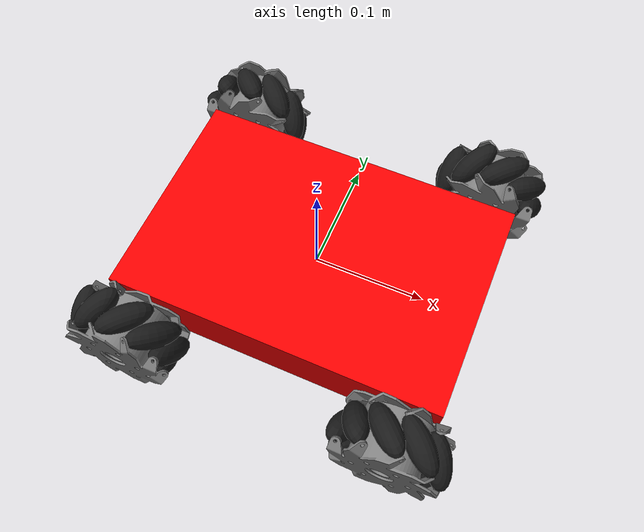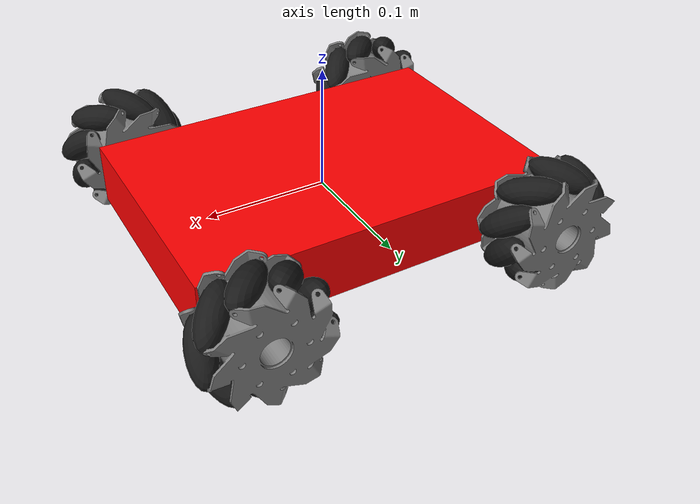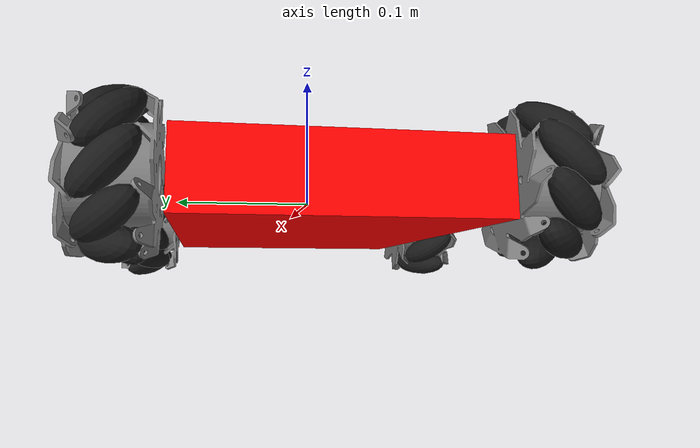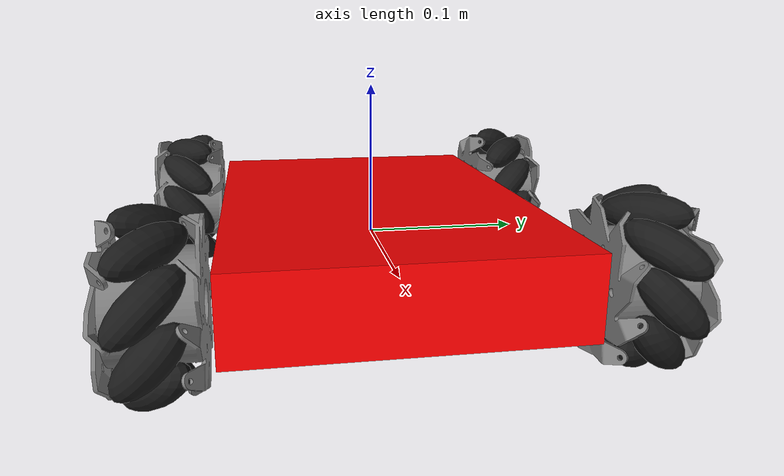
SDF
<?xml version="1.0"?>
<sdf version="1.9">
  <model name="omni4rover">
    <link name="base_link">
      <inertial>
        <mass>1.5</mass>
        <inertia>
          <ixx>0.0053125</ixx>
          <ixy>0</ixy>
          <ixz>0</ixz>
          <iyy>0.0115625</iyy>
          <iyz>0</iyz>
          <izz>0.01625</izz>
        </inertia>
      </inertial>
      <collision name="collision">
        <geometry>
          <box>
            <size>0.3 0.2 0.05</size>
          </box>
        </geometry>
      </collision>
      <visual name="visual">
        <geometry>
          <box>
            <size>0.3 0.2 0.05</size>
          </box>
        </geometry>
        <material>
          <ambient>1 0 0</ambient>
          <diffuse>1 0 0</diffuse>
          <specular>0.1 0.1 0.1</specular>
        </material>
      </visual>

      <!-- senors -->
      <sensor name="imu_sensor" type="imu">
        <pose degrees="true">0 0 0 180 0 0</pose>
        <always_on>1</always_on>
        <update_rate>1000.0</update_rate>
      </sensor>
    </link>

      <!-- wheels -->
      <include>
      <uri>model://mecanum_wheel_left</uri>
      <pose degrees="true">0.12 0.13 0 -90 0 0</pose>
      <name>front_left_wheel</name>
    </include>
    <joint name="front_left_wheel_joint" type="revolute">
      <child>front_left_wheel::wheel_link</child>
      <parent>base_link</parent>
      <axis>
        <xyz>0 0 1</xyz>
        <limit>
          <lower>-1.0e16</lower>
          <upper>1.0e16</upper>
          <effort>1.0e6</effort>
        </limit>
        <dynamics>
          <damping>0.0001</damping>
        </dynamics>
      </axis>
    </joint>

    <include>
      <uri>model://mecanum_wheel_right</uri>
      <pose degrees="true">0.12 -0.13 0 -90 0 0</pose>
      <name>front_right_wheel</name>
    </include>
    <joint name="front_right_wheel_joint" type="revolute">
      <child>front_right_wheel::wheel_link</child>
      <parent>base_link</parent>
      <axis>
        <xyz>0 0 1</xyz>
        <limit>
          <lower>-1.0e16</lower>
          <upper>1.0e16</upper>
          <effort>1.0e6</effort>
        </limit>
        <dynamics>
          <damping>0.0001</damping>
        </dynamics>
      </axis>
    </joint>

    <include>
      <uri>model://mecanum_wheel_right</uri>
      <pose degrees="true">-0.12 0.13 0 -90 0 0</pose>
      <name>back_left_wheel</name>
    </include>
    <joint name="back_left_wheel_joint" type="revolute">
      <child>back_left_wheel::wheel_link</child>
      <parent>base_link</parent>
      <axis>
        <xyz>0 0 1</xyz>
        <limit>
          <lower>-1.0e16</lower>
          <upper>1.0e16</upper>
          <effort>1.0e6</effort>
        </limit>
        <dynamics>
          <damping>0.0001</damping>
        </dynamics>
      </axis>
    </joint>

    <include>
      <uri>model://mecanum_wheel_left</uri>
      <pose degrees="true">-0.12 -0.13 0 -90 0 0</pose>
      <name>back_right_wheel</name>
    </include>
    <joint name="back_right_wheel_joint" type="revolute">
      <child>back_right_wheel::wheel_link</child>
      <parent>base_link</parent>
      <axis>
        <xyz>0 0 1</xyz>
        <limit>
          <lower>-1.0e16</lower>
          <upper>1.0e16</upper>
          <effort>1.0e6</effort>
        </limit>
        <dynamics>
          <damping>0.0001</damping>
        </dynamics>
      </axis>
    </joint>

    <plugin filename="gz-sim-joint-state-publisher-system"
      name="gz::sim::systems::JointStatePublisher">
    </plugin>
    <plugin
      filename="gz-sim-odometry-publisher-system"
      name="gz::sim::systems::OdometryPublisher">
      <odom_frame>odom</odom_frame>
      <robot_base_frame>base_link</robot_base_frame>
      <dimensions>3</dimensions>
    </plugin>

    <plugin name="gz::sim::systems::JointController"
      filename="gz-sim-joint-controller-system">
      <joint_name>front_left_wheel_joint</joint_name>
      <use_force_commands>1</use_force_commands>
      <topic>/model/omni4rover/joint/front_left_wheel_joint/cmd_vel</topic>
      <initial_velocity>0.0</initial_velocity>
      <p_gain>0.3</p_gain>
      <d_gain>1.0e-4</d_gain>
      <cmd_max>1.0e6</cmd_max>
      <cmd_min>-1.0e6</cmd_min>
    </plugin>
    <plugin name="gz::sim::systems::JointController"
      filename="gz-sim-joint-controller-system">
      <joint_name>front_right_wheel_joint</joint_name>
      <use_force_commands>1</use_force_commands>
      <topic>/model/omni4rover/joint/front_right_wheel_joint/cmd_vel</topic>
      <initial_velocity>0.0</initial_velocity>
      <p_gain>0.3</p_gain>
      <d_gain>1.0e-4</d_gain>
      <cmd_max>1.0e6</cmd_max>
      <cmd_min>-1.0e6</cmd_min>
    </plugin>
    <plugin name="gz::sim::systems::JointController"
      filename="gz-sim-joint-controller-system">
      <joint_name>back_left_wheel_joint</joint_name>
      <use_force_commands>1</use_force_commands>
      <topic>/model/omni4rover/joint/back_left_wheel_joint/cmd_vel</topic>
      <initial_velocity>0.0</initial_velocity>
      <p_gain>0.3</p_gain>
      <d_gain>1.0e-4</d_gain>
      <cmd_max>1.0e6</cmd_max>
      <cmd_min>-1.0e6</cmd_min>
    </plugin>
    <plugin name="gz::sim::systems::JointController"
      filename="gz-sim-joint-controller-system">
      <joint_name>back_right_wheel_joint</joint_name>
      <use_force_commands>1</use_force_commands>
      <topic>/model/omni4rover/joint/back_right_wheel_joint/cmd_vel</topic>
      <initial_velocity>0.0</initial_velocity>
      <p_gain>0.3</p_gain>
      <d_gain>1.0e-4</d_gain>
      <cmd_max>1.0e4</cmd_max>
      <cmd_min>-1.0e4</cmd_min>
    </plugin>

    <plugin name="ArduPilotPlugin"
      filename="ArduPilotPlugin">
      <fdm_addr>127.0.0.1</fdm_addr>
      <fdm_port_in>9002</fdm_port_in>
      <connectionTimeoutMaxCount>5</connectionTimeoutMaxCount>
      <lock_step>1</lock_step>
      <no_time_sync>1</no_time_sync>
      <have_32_channels>0</have_32_channels>
      <modelXYZToAirplaneXForwardZDown degrees="true">0 0 0 180 0 0</modelXYZToAirplaneXForwardZDown>
      <gazeboXYZToNED degrees="true">0 0 0 180 0 90</gazeboXYZToNED>
      <imuName>base_link::imu_sensor</imuName>

      <control channel="0">
        <jointName>front_right_wheel_joint</jointName>
        <useForce>1</useForce>
        <multiplier>100</multiplier>
        <offset>-0.5</offset>
        <servo_max>2000</servo_max>
        <servo_min>1000</servo_min>
        <type>COMMAND</type>
        <cmd_topic>/model/omni4rover/joint/front_right_wheel_joint/cmd_vel</cmd_topic>
      </control>

      <control channel="1">
        <jointName>back_right_wheel_joint</jointName>
        <useForce>1</useForce>
        <multiplier>100</multiplier>
        <offset>-0.5</offset>
        <servo_max>2000</servo_max>
        <servo_min>1000</servo_min>
        <type>COMMAND</type>
        <cmd_topic>/model/omni4rover/joint/back_right_wheel_joint/cmd_vel</cmd_topic>
      </control>

      <control channel="2">
        <jointName>back_left_wheel_joint</jointName>
        <useForce>1</useForce>
        <multiplier>100</multiplier>
        <offset>-0.5</offset>
        <servo_max>2000</servo_max>
        <servo_min>1000</servo_min>
        <type>COMMAND</type>
        <cmd_topic>/model/omni4rover/joint/back_left_wheel_joint/cmd_vel</cmd_topic>
      </control>

      <control channel="3">
        <jointName>front_left_wheel_joint</jointName>
        <useForce>1</useForce>
        <multiplier>100</multiplier>
        <offset>-0.5</offset>
        <servo_max>2000</servo_max>
        <servo_min>1000</servo_min>
        <type>COMMAND</type>
        <cmd_topic>/model/omni4rover/joint/front_left_wheel_joint/cmd_vel</cmd_topic>
      </control>
    </plugin>

  </model>
</sdf>

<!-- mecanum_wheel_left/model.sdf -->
<sdf version="1.9">
  <model name="mecanum_wheel_left">
    <link name="wheel_link">
      <pose>0 0 0 0 0 0</pose>
      <inertial>
        <pose>0 0 0 0 0 0</pose>
        <mass>0.045</mass>
        <inertia>
          <ixx>3.44913E-05</ixx>
          <ixy>0</ixy>
          <ixz>0</ixz>
          <iyy>3.44913E-05</iyy>
          <iyz>0</iyz>
          <izz>5.02327E-05</izz>
        </inertia>
      </inertial>
      <collision name="wheel1_collision">
        <pose>0 0 0.0225 0 0 0</pose>
        <geometry>
          <cylinder>
            <radius>0.04725</radius>
            <length>0.005</length>
          </cylinder>
        </geometry>
      </collision>
      <collision name="wheel2_collision">
        <pose>0 0 -0.0225 0 0 0</pose>
        <geometry>
          <cylinder>
            <radius>0.04725</radius>
            <length>0.005</length>
          </cylinder>
        </geometry>
      </collision>
      <visual name="wheel_visual">
        <geometry>
          <mesh>
            <uri>models://mecanum_wheel_left/meshes/mecanum_wheel_frame_left.stl</uri>
          </mesh>
        </geometry>
        <material>
          <ambient>0.5 0.5 0.5</ambient>
          <diffuse>0.5 0.5 0.5</diffuse>
          <specular>0.1 0.1 0.1</specular>
        </material>
      </visual>

    </link>

    <link name="roller_1_link">
      <pose degrees="true">0.040288288 0 0 -45 2 0</pose>
      <inertial>
        <pose>0 0 0 0 0 0</pose>
        <mass>0.015838863</mass>
        <inertia>
          <ixx>2.36316E-06</ixx>
          <ixy>0</ixy>
          <ixz>0</ixz>
          <iyy>2.36316E-06</iyy>
          <iyz>0</iyz>
          <izz>7.66601E-07</izz>
        </inertia>
      </inertial>
      <collision name="collision">
        <pose degrees="true">0 0 0 90 9 0</pose>
        <geometry>
          <sphere>
            <radius>0.011</radius>
          </sphere>
        </geometry>
        <surface>
          <friction>
            <ode>
              <mu>10.0</mu>
              <mu2>10.0</mu2>
            </ode>
          </friction>
        </surface>
      </collision>
      <visual name="visual">
        <pose degrees="true">0 0 0 90 9 0</pose>
        <geometry>
          <ellipsoid>
            <radii>0.011 0.025 0.011</radii>
          </ellipsoid>
        </geometry>
        <material>
          <ambient>0.1 0.1 0.1</ambient>
          <diffuse>0.1 0.1 0.1</diffuse>
          <specular>0.1 0.1 0.1</specular>
        </material>
      </visual>
    </link>
    <joint name="roller_1_joint" type="revolute">
      <child>roller_1_link</child>
      <parent>wheel_link</parent>
      <axis>
        <xyz>0 0 1</xyz>
        <limit>
          <lower>-1.0e16</lower>
          <upper>1.0e16</upper>
        </limit>
        <dynamics>
          <damping>0.0000</damping>
          <friction>0.0001</friction>
        </dynamics>
      </axis>
    </joint>

    <link name="roller_2_link">
      <pose degrees="true">0.030862619 0.025896812 0 -45 2 40</pose>
      <inertial>
        <pose>0 0 0 0 0 0</pose>
        <mass>0.015838863</mass>
        <inertia>
          <ixx>2.36316E-06</ixx>
          <ixy>0</ixy>
          <ixz>0</ixz>
          <iyy>2.36316E-06</iyy>
          <iyz>0</iyz>
          <izz>7.66601E-07</izz>
        </inertia>
      </inertial>
      <collision name="collision">
        <pose degrees="true">0 0 0 90 9 0</pose>
        <geometry>
          <sphere>
            <radius>0.011</radius>
          </sphere>
        </geometry>
        <surface>
          <friction>
            <ode>
              <mu>10.0</mu>
              <mu2>10.0</mu2>
            </ode>
          </friction>
        </surface>
      </collision>
      <visual name="visual">
        <pose degrees="true">0 0 0 90 9 0</pose>
        <geometry>
          <ellipsoid>
            <radii>0.011 0.025 0.011</radii>
          </ellipsoid>
        </geometry>
        <material>
          <ambient>0.1 0.1 0.1</ambient>
          <diffuse>0.1 0.1 0.1</diffuse>
          <specular>0.1 0.1 0.1</specular>
        </material>
      </visual>
    </link>
    <joint name="roller_2_joint" type="revolute">
      <child>roller_2_link</child>
      <parent>wheel_link</parent>
      <axis>
        <xyz>0 0 1</xyz>
        <limit>
          <lower>-1.0e16</lower>
          <upper>1.0e16</upper>
        </limit>
        <dynamics>
          <damping>0.0000</damping>
          <friction>0.0001</friction>
        </dynamics>
      </axis>
    </joint>

    <link name="roller_3_link">
      <pose degrees="true">0.006995988 0.039676218 0 -45 2 80</pose>
      <inertial>
        <pose>0 0 0 0 0 0</pose>
        <mass>0.015838863</mass>
        <inertia>
          <ixx>2.36316E-06</ixx>
          <ixy>0</ixy>
          <ixz>0</ixz>
          <iyy>2.36316E-06</iyy>
          <iyz>0</iyz>
          <izz>7.66601E-07</izz>
        </inertia>
      </inertial>
      <collision name="collision">
        <pose degrees="true">0 0 0 90 9 0</pose>
        <geometry>
          <sphere>
            <radius>0.011</radius>
          </sphere>
        </geometry>
        <surface>
          <friction>
            <ode>
              <mu>10.0</mu>
              <mu2>10.0</mu2>
            </ode>
          </friction>
        </surface>
      </collision>
      <visual name="visual">
        <pose degrees="true">0 0 0 90 9 0</pose>
        <geometry>
          <ellipsoid>
            <radii>0.011 0.025 0.011</radii>
          </ellipsoid>
        </geometry>
        <material>
          <ambient>0.1 0.1 0.1</ambient>
          <diffuse>0.1 0.1 0.1</diffuse>
          <specular>0.1 0.1 0.1</specular>
        </material>
      </visual>
    </link>
    <joint name="roller_3_joint" type="revolute">
      <child>roller_3_link</child>
      <parent>wheel_link</parent>
      <axis>
        <xyz>0 0 1</xyz>
        <limit>
          <lower>-1.0e16</lower>
          <upper>1.0e16</upper>
        </limit>
        <dynamics>
          <damping>0.0000</damping>
          <friction>0.0001</friction>
        </dynamics>
      </axis>
    </joint>

    <link name="roller_4_link">
      <pose degrees="true">-0.020144144 0.034890681 0 -45 2 120</pose>
      <inertial>
        <pose>0 0 0 0 0 0</pose>
        <mass>0.015838863</mass>
        <inertia>
          <ixx>2.36316E-06</ixx>
          <ixy>0</ixy>
          <ixz>0</ixz>
          <iyy>2.36316E-06</iyy>
          <iyz>0</iyz>
          <izz>7.66601E-07</izz>
        </inertia>
      </inertial>
      <collision name="collision">
        <pose degrees="true">0 0 0 90 9 0</pose>
        <geometry>
          <sphere>
            <radius>0.011</radius>
          </sphere>
        </geometry>
        <surface>
          <friction>
            <ode>
              <mu>10.0</mu>
              <mu2>10.0</mu2>
            </ode>
          </friction>
        </surface>
      </collision>
      <visual name="visual">
        <pose degrees="true">0 0 0 90 9 0</pose>
        <geometry>
          <ellipsoid>
            <radii>0.011 0.025 0.011</radii>
          </ellipsoid>
        </geometry>
        <material>
          <ambient>0.1 0.1 0.1</ambient>
          <diffuse>0.1 0.1 0.1</diffuse>
          <specular>0.1 0.1 0.1</specular>
        </material>
      </visual>
    </link>
    <joint name="roller_4_joint" type="revolute">
      <child>roller_4_link</child>
      <parent>wheel_link</parent>
      <axis>
        <xyz>0 0 1</xyz>
        <limit>
          <lower>-1.0e16</lower>
          <upper>1.0e16</upper>
        </limit>
        <dynamics>
          <damping>0.0000</damping>
          <friction>0.0001</friction>
        </dynamics>
      </axis>
    </joint>

    <link name="roller_5_link">
      <pose degrees="true">-0.037858607 0.013779406 0 -45 2 160</pose>
      <inertial>
        <pose>0 0 0 0 0 0</pose>
        <mass>0.015838863</mass>
        <inertia>
          <ixx>2.36316E-06</ixx>
          <ixy>0</ixy>
          <ixz>0</ixz>
          <iyy>2.36316E-06</iyy>
          <iyz>0</iyz>
          <izz>7.66601E-07</izz>
        </inertia>
      </inertial>
      <collision name="collision">
        <pose degrees="true">0 0 0 90 9 0</pose>
        <geometry>
          <sphere>
            <radius>0.011</radius>
          </sphere>
        </geometry>
        <surface>
          <friction>
            <ode>
              <mu>10.0</mu>
              <mu2>10.0</mu2>
            </ode>
          </friction>
        </surface>
      </collision>
      <visual name="visual">
        <pose degrees="true">0 0 0 90 9 0</pose>
        <geometry>
          <ellipsoid>
            <radii>0.011 0.025 0.011</radii>
          </ellipsoid>
        </geometry>
        <material>
          <ambient>0.1 0.1 0.1</ambient>
          <diffuse>0.1 0.1 0.1</diffuse>
          <specular>0.1 0.1 0.1</specular>
        </material>
      </visual>
    </link>
    <joint name="roller_5_joint" type="revolute">
      <child>roller_5_link</child>
      <parent>wheel_link</parent>
      <axis>
        <xyz>0 0 1</xyz>
        <limit>
          <lower>-1.0e16</lower>
          <upper>1.0e16</upper>
        </limit>
        <dynamics>
          <damping>0.0000</damping>
          <friction>0.0001</friction>
        </dynamics>
      </axis>
    </joint>

    <link name="roller_6_link">
      <pose degrees="true">-0.037858607 -0.013779406 0 -45 2 200</pose>
      <inertial>
        <pose>0 0 0 0 0 0</pose>
        <mass>0.015838863</mass>
        <inertia>
          <ixx>2.36316E-06</ixx>
          <ixy>0</ixy>
          <ixz>0</ixz>
          <iyy>2.36316E-06</iyy>
          <iyz>0</iyz>
          <izz>7.66601E-07</izz>
        </inertia>
      </inertial>
      <collision name="collision">
        <pose degrees="true">0 0 0 90 9 0</pose>
        <geometry>
          <sphere>
            <radius>0.011</radius>
          </sphere>
        </geometry>
        <surface>
          <friction>
            <ode>
              <mu>10.0</mu>
              <mu2>10.0</mu2>
            </ode>
          </friction>
        </surface>
      </collision>
      <visual name="visual">
        <pose degrees="true">0 0 0 90 9 0</pose>
        <geometry>
          <ellipsoid>
            <radii>0.011 0.025 0.011</radii>
          </ellipsoid>
        </geometry>
        <material>
          <ambient>0.1 0.1 0.1</ambient>
          <diffuse>0.1 0.1 0.1</diffuse>
          <specular>0.1 0.1 0.1</specular>
        </material>
      </visual>
    </link>
    <joint name="roller_6_joint" type="revolute">
      <child>roller_6_link</child>
      <parent>wheel_link</parent>
      <axis>
        <xyz>0 0 1</xyz>
        <limit>
          <lower>-1.0e16</lower>
          <upper>1.0e16</upper>
        </limit>
        <dynamics>
          <damping>0.0000</damping>
          <friction>0.0001</friction>
        </dynamics>
      </axis>
    </joint>

    <link name="roller_7_link">
      <pose degrees="true">-0.020144144 -0.034890681 0 -45 2 240</pose>
      <inertial>
        <pose>0 0 0 0 0 0</pose>
        <mass>0.015838863</mass>
        <inertia>
          <ixx>2.36316E-06</ixx>
          <ixy>0</ixy>
          <ixz>0</ixz>
          <iyy>2.36316E-06</iyy>
          <iyz>0</iyz>
          <izz>7.66601E-07</izz>
        </inertia>
      </inertial>
      <collision name="collision">
        <pose degrees="true">0 0 0 90 9 0</pose>
        <geometry>
          <sphere>
            <radius>0.011</radius>
          </sphere>
        </geometry>
        <surface>
          <friction>
            <ode>
              <mu>10.0</mu>
              <mu2>10.0</mu2>
            </ode>
          </friction>
        </surface>
      </collision>
      <visual name="visual">
        <pose degrees="true">0 0 0 90 9 0</pose>
        <geometry>
          <ellipsoid>
            <radii>0.011 0.025 0.011</radii>
          </ellipsoid>
        </geometry>
        <material>
          <ambient>0.1 0.1 0.1</ambient>
          <diffuse>0.1 0.1 0.1</diffuse>
          <specular>0.1 0.1 0.1</specular>
        </material>
      </visual>
    </link>
    <joint name="roller_7_joint" type="revolute">
      <child>roller_7_link</child>
      <parent>wheel_link</parent>
      <axis>
        <xyz>0 0 1</xyz>
        <limit>
          <lower>-1.0e16</lower>
          <upper>1.0e16</upper>
        </limit>
        <dynamics>
          <damping>0.0000</damping>
          <friction>0.0001</friction>
        </dynamics>
      </axis>
    </joint>

    <link name="roller_8_link">
      <pose degrees="true">0.006995988 -0.039676218 0 -45 2 280</pose>
      <inertial>
        <pose>0 0 0 0 0 0</pose>
        <mass>0.015838863</mass>
        <inertia>
          <ixx>2.36316E-06</ixx>
          <ixy>0</ixy>
          <ixz>0</ixz>
          <iyy>2.36316E-06</iyy>
          <iyz>0</iyz>
          <izz>7.66601E-07</izz>
        </inertia>
      </inertial>
      <collision name="collision">
        <pose degrees="true">0 0 0 90 9 0</pose>
        <geometry>
          <sphere>
            <radius>0.011</radius>
          </sphere>
        </geometry>
        <surface>
          <friction>
            <ode>
              <mu>10.0</mu>
              <mu2>10.0</mu2>
            </ode>
          </friction>
        </surface>
      </collision>
      <visual name="visual">
        <pose degrees="true">0 0 0 90 9 0</pose>
        <geometry>
          <ellipsoid>
            <radii>0.011 0.025 0.011</radii>
          </ellipsoid>
        </geometry>
        <material>
          <ambient>0.1 0.1 0.1</ambient>
          <diffuse>0.1 0.1 0.1</diffuse>
          <specular>0.1 0.1 0.1</specular>
        </material>
      </visual>
    </link>
    <joint name="roller_8_joint" type="revolute">
      <child>roller_8_link</child>
      <parent>wheel_link</parent>
      <axis>
        <xyz>0 0 1</xyz>
        <limit>
          <lower>-1.0e16</lower>
          <upper>1.0e16</upper>
        </limit>
        <dynamics>
          <damping>0.0000</damping>
          <friction>0.0001</friction>
        </dynamics>
      </axis>
    </joint>

    <link name="roller_9_link">
      <pose degrees="true">0.030862619 -0.025896812 0 -45 2 320</pose>
      <inertial>
        <pose>0 0 0 0 0 0</pose>
        <mass>0.015838863</mass>
        <inertia>
          <ixx>2.36316E-06</ixx>
          <ixy>0</ixy>
          <ixz>0</ixz>
          <iyy>2.36316E-06</iyy>
          <iyz>0</iyz>
          <izz>7.66601E-07</izz>
        </inertia>
      </inertial>
      <collision name="collision">
        <pose degrees="true">0 0 0 90 9 0</pose>
        <geometry>
          <sphere>
            <radius>0.011</radius>
          </sphere>
        </geometry>
        <surface>
          <friction>
            <ode>
              <mu>10.0</mu>
              <mu2>10.0</mu2>
            </ode>
          </friction>
        </surface>
      </collision>
      <visual name="visual">
        <pose degrees="true">0 0 0 90 9 0</pose>
        <geometry>
          <ellipsoid>
            <radii>0.011 0.025 0.011</radii>
          </ellipsoid>
        </geometry>
        <material>
          <ambient>0.1 0.1 0.1</ambient>
          <diffuse>0.1 0.1 0.1</diffuse>
          <specular>0.1 0.1 0.1</specular>
        </material>
      </visual>
    </link>
    <joint name="roller_9_joint" type="revolute">
      <child>roller_9_link</child>
      <parent>wheel_link</parent>
      <axis>
        <xyz>0 0 1</xyz>
        <limit>
          <lower>-1.0e16</lower>
          <upper>1.0e16</upper>
        </limit>
        <dynamics>
          <damping>0.0000</damping>
          <friction>0.0001</friction>
        </dynamics>
      </axis>
    </joint>

  </model>
</sdf>

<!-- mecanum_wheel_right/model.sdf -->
<sdf version="1.9">
  <model name="mecanum_wheel_right">
    <link name="wheel_link">
      <pose>0 0 0 0 0 0</pose>
      <inertial>
        <pose>0 0 0 0 0 0</pose>
        <mass>0.045</mass>
        <inertia>
          <ixx>3.44913E-05</ixx>
          <ixy>0</ixy>
          <ixz>0</ixz>
          <iyy>3.44913E-05</iyy>
          <iyz>0</iyz>
          <izz>5.02327E-05</izz>
        </inertia>
      </inertial>
      <collision name="wheel1_collision">
        <pose>0 0 0.0225 0 0 0</pose>
        <geometry>
          <cylinder>
            <radius>0.04725</radius>
            <length>0.005</length>
          </cylinder>
        </geometry>
      </collision>
      <collision name="wheel2_collision">
        <pose>0 0 -0.0225 0 0 0</pose>
        <geometry>
          <cylinder>
            <radius>0.04725</radius>
            <length>0.005</length>
          </cylinder>
        </geometry>
      </collision>
      <visual name="wheel_visual">
        <geometry>
          <mesh>
            <uri>models://mecanum_wheel_right/meshes/mecanum_wheel_frame_right.stl</uri>
          </mesh>
        </geometry>
        <material>
          <ambient>0.5 0.5 0.5</ambient>
          <diffuse>0.5 0.5 0.5</diffuse>
          <specular>0.1 0.1 0.1</specular>
        </material>
      </visual>
    </link>

    <link name="roller_1_link">
      <pose degrees="true">-0.040288288 0 0 -45 2 0</pose>
      <inertial>
        <pose>0 0 0 0 0 0</pose>
        <mass>0.015838863</mass>
        <inertia>
          <ixx>2.36316E-06</ixx>
          <ixy>0</ixy>
          <ixz>0</ixz>
          <iyy>2.36316E-06</iyy>
          <iyz>0</iyz>
          <izz>7.66601E-07</izz>
        </inertia>
      </inertial>
      <collision name="collision">
        <pose degrees="true">0 0 0 90 9 0</pose>
        <geometry>
          <sphere>
            <radius>0.011</radius>
          </sphere>
        </geometry>
        <surface>
          <friction>
            <ode>
              <mu>10.0</mu>
              <mu2>10.0</mu2>
            </ode>
          </friction>
        </surface>
      </collision>
      <visual name="visual">
        <pose degrees="true">0 0 0 90 9 0</pose>
        <geometry>
          <ellipsoid>
            <radii>0.011 0.025 0.011</radii>
          </ellipsoid>
        </geometry>
        <material>
          <ambient>0.1 0.1 0.1</ambient>
          <diffuse>0.1 0.1 0.1</diffuse>
          <specular>0.1 0.1 0.1</specular>
        </material>
      </visual>
    </link>
    <joint name="roller_1_joint" type="revolute">
      <child>roller_1_link</child>
      <parent>wheel_link</parent>
      <axis>
        <xyz>0 0 1</xyz>
        <limit>
          <lower>-1.0e16</lower>
          <upper>1.0e16</upper>
        </limit>
        <dynamics>
          <damping>0.0000</damping>
          <friction>0.0001</friction>
        </dynamics>
      </axis>
    </joint>

    <link name="roller_2_link">
      <pose degrees="true">-0.030862619 -0.025896812 0 -45 2 40</pose>
      <inertial>
        <pose>0 0 0 0 0 0</pose>
        <mass>0.015838863</mass>
        <inertia>
          <ixx>2.36316E-06</ixx>
          <ixy>0</ixy>
          <ixz>0</ixz>
          <iyy>2.36316E-06</iyy>
          <iyz>0</iyz>
          <izz>7.66601E-07</izz>
        </inertia>
      </inertial>
      <collision name="collision">
        <pose degrees="true">0 0 0 90 9 0</pose>
        <geometry>
          <sphere>
            <radius>0.011</radius>
          </sphere>
        </geometry>
        <surface>
          <friction>
            <ode>
              <mu>10.0</mu>
              <mu2>10.0</mu2>
            </ode>
          </friction>
        </surface>
      </collision>
      <visual name="visual">
        <pose degrees="true">0 0 0 90 9 0</pose>
        <geometry>
          <ellipsoid>
            <radii>0.011 0.025 0.011</radii>
          </ellipsoid>
        </geometry>
        <material>
          <ambient>0.1 0.1 0.1</ambient>
          <diffuse>0.1 0.1 0.1</diffuse>
          <specular>0.1 0.1 0.1</specular>
        </material>
      </visual>
    </link>
    <joint name="roller_2_joint" type="revolute">
      <child>roller_2_link</child>
      <parent>wheel_link</parent>
      <axis>
        <xyz>0 0 1</xyz>
        <limit>
          <lower>-1.0e16</lower>
          <upper>1.0e16</upper>
        </limit>
        <dynamics>
          <damping>0.0000</damping>
          <friction>0.0001</friction>
        </dynamics>
      </axis>
    </joint>

    <link name="roller_3_link">
      <pose degrees="true">-0.006995988 -0.039676218 0 -45 2 80</pose>
      <inertial>
        <pose>0 0 0 0 0 0</pose>
        <mass>0.015838863</mass>
        <inertia>
          <ixx>2.36316E-06</ixx>
          <ixy>0</ixy>
          <ixz>0</ixz>
          <iyy>2.36316E-06</iyy>
          <iyz>0</iyz>
          <izz>7.66601E-07</izz>
        </inertia>
      </inertial>
      <collision name="collision">
        <pose degrees="true">0 0 0 90 9 0</pose>
        <geometry>
          <sphere>
            <radius>0.011</radius>
          </sphere>
          <surface>
            <friction>
              <ode>
                <mu>10.0</mu>
                <mu2>10.0</mu2>
              </ode>
            </friction>
          </surface>
        </geometry>
      </collision>
      <visual name="visual">
        <pose degrees="true">0 0 0 90 9 0</pose>
        <geometry>
          <ellipsoid>
            <radii>0.011 0.025 0.011</radii>
          </ellipsoid>
        </geometry>
        <material>
          <ambient>0.1 0.1 0.1</ambient>
          <diffuse>0.1 0.1 0.1</diffuse>
          <specular>0.1 0.1 0.1</specular>
        </material>
      </visual>
    </link>
    <joint name="roller_3_joint" type="revolute">
      <child>roller_3_link</child>
      <parent>wheel_link</parent>
      <axis>
        <xyz>0 0 1</xyz>
        <limit>
          <lower>-1.0e16</lower>
          <upper>1.0e16</upper>
        </limit>
        <dynamics>
          <damping>0.0000</damping>
          <friction>0.0001</friction>
        </dynamics>
      </axis>
    </joint>

    <link name="roller_4_link">
      <pose degrees="true">0.020144144 -0.034890681 0 -45 2 120</pose>
      <inertial>
        <pose>0 0 0 0 0 0</pose>
        <mass>0.015838863</mass>
        <inertia>
          <ixx>2.36316E-06</ixx>
          <ixy>0</ixy>
          <ixz>0</ixz>
          <iyy>2.36316E-06</iyy>
          <iyz>0</iyz>
          <izz>7.66601E-07</izz>
        </inertia>
      </inertial>
      <collision name="collision">
        <pose degrees="true">0 0 0 90 9 0</pose>
        <geometry>
          <sphere>
            <radius>0.011</radius>
          </sphere>
        </geometry>
        <surface>
          <friction>
            <ode>
              <mu>10.0</mu>
              <mu2>10.0</mu2>
            </ode>
          </friction>
        </surface>
      </collision>
      <visual name="visual">
        <pose degrees="true">0 0 0 90 9 0</pose>
        <geometry>
          <ellipsoid>
            <radii>0.011 0.025 0.011</radii>
          </ellipsoid>
        </geometry>
        <material>
          <ambient>0.1 0.1 0.1</ambient>
          <diffuse>0.1 0.1 0.1</diffuse>
          <specular>0.1 0.1 0.1</specular>
        </material>
      </visual>
    </link>
    <joint name="roller_4_joint" type="revolute">
      <child>roller_4_link</child>
      <parent>wheel_link</parent>
      <axis>
        <xyz>0 0 1</xyz>
        <limit>
          <lower>-1.0e16</lower>
          <upper>1.0e16</upper>
        </limit>
        <dynamics>
          <damping>0.0000</damping>
          <friction>0.0001</friction>
        </dynamics>
      </axis>
    </joint>

    <link name="roller_5_link">
      <pose degrees="true">0.037858607 -0.013779406 0 -45 2 160</pose>
      <inertial>
        <pose>0 0 0 0 0 0</pose>
        <mass>0.015838863</mass>
        <inertia>
          <ixx>2.36316E-06</ixx>
          <ixy>0</ixy>
          <ixz>0</ixz>
          <iyy>2.36316E-06</iyy>
          <iyz>0</iyz>
          <izz>7.66601E-07</izz>
        </inertia>
      </inertial>
      <collision name="collision">
        <pose degrees="true">0 0 0 90 9 0</pose>
        <geometry>
          <sphere>
            <radius>0.011</radius>
          </sphere>
        </geometry>
        <surface>
          <friction>
            <ode>
              <mu>10.0</mu>
              <mu2>10.0</mu2>
            </ode>
          </friction>
        </surface>
      </collision>
      <visual name="visual">
        <pose degrees="true">0 0 0 90 9 0</pose>
        <geometry>
          <ellipsoid>
            <radii>0.011 0.025 0.011</radii>
          </ellipsoid>
        </geometry>
        <material>
          <ambient>0.1 0.1 0.1</ambient>
          <diffuse>0.1 0.1 0.1</diffuse>
          <specular>0.1 0.1 0.1</specular>
        </material>
      </visual>
    </link>
    <joint name="roller_5_joint" type="revolute">
      <child>roller_5_link</child>
      <parent>wheel_link</parent>
      <axis>
        <xyz>0 0 1</xyz>
        <limit>
          <lower>-1.0e16</lower>
          <upper>1.0e16</upper>
        </limit>
        <dynamics>
          <damping>0.0000</damping>
          <friction>0.0001</friction>
        </dynamics>
      </axis>
    </joint>

    <link name="roller_6_link">
      <pose degrees="true">0.037858607 0.013779406 0 -45 2 200</pose>
      <inertial>
        <pose>0 0 0 0 0 0</pose>
        <mass>0.015838863</mass>
        <inertia>
          <ixx>2.36316E-06</ixx>
          <ixy>0</ixy>
          <ixz>0</ixz>
          <iyy>2.36316E-06</iyy>
          <iyz>0</iyz>
          <izz>7.66601E-07</izz>
        </inertia>
      </inertial>
      <collision name="collision">
        <pose degrees="true">0 0 0 90 9 0</pose>
        <geometry>
          <sphere>
            <radius>0.011</radius>
          </sphere>
        </geometry>
        <surface>
          <friction>
            <ode>
              <mu>10.0</mu>
              <mu2>10.0</mu2>
            </ode>
          </friction>
        </surface>
      </collision>
      <visual name="visual">
        <pose degrees="true">0 0 0 90 9 0</pose>
        <geometry>
          <ellipsoid>
            <radii>0.011 0.025 0.011</radii>
          </ellipsoid>
        </geometry>
        <material>
          <ambient>0.1 0.1 0.1</ambient>
          <diffuse>0.1 0.1 0.1</diffuse>
          <specular>0.1 0.1 0.1</specular>
        </material>
      </visual>
    </link>
    <joint name="roller_6_joint" type="revolute">
      <child>roller_6_link</child>
      <parent>wheel_link</parent>
      <axis>
        <xyz>0 0 1</xyz>
        <limit>
          <lower>-1.0e16</lower>
          <upper>1.0e16</upper>
        </limit>
        <dynamics>
          <damping>0.0000</damping>
          <friction>0.0001</friction>
        </dynamics>
      </axis>
    </joint>

    <link name="roller_7_link">
      <pose degrees="true">0.020144144 0.034890681 0 -45 2 240</pose>
      <inertial>
        <pose>0 0 0 0 0 0</pose>
        <mass>0.015838863</mass>
        <inertia>
          <ixx>2.36316E-06</ixx>
          <ixy>0</ixy>
          <ixz>0</ixz>
          <iyy>2.36316E-06</iyy>
          <iyz>0</iyz>
          <izz>7.66601E-07</izz>
        </inertia>
      </inertial>
      <collision name="collision">
        <pose degrees="true">0 0 0 90 9 0</pose>
        <geometry>
          <sphere>
            <radius>0.011</radius>
          </sphere>
        </geometry>
        <surface>
          <friction>
            <ode>
              <mu>10.0</mu>
              <mu2>10.0</mu2>
            </ode>
          </friction>
        </surface>
      </collision>
      <visual name="visual">
        <pose degrees="true">0 0 0 90 9 0</pose>
        <geometry>
          <ellipsoid>
            <radii>0.011 0.025 0.011</radii>
          </ellipsoid>
        </geometry>
        <material>
          <ambient>0.1 0.1 0.1</ambient>
          <diffuse>0.1 0.1 0.1</diffuse>
          <specular>0.1 0.1 0.1</specular>
        </material>
      </visual>
    </link>
    <joint name="roller_7_joint" type="revolute">
      <child>roller_7_link</child>
      <parent>wheel_link</parent>
      <axis>
        <xyz>0 0 1</xyz>
        <limit>
          <lower>-1.0e16</lower>
          <upper>1.0e16</upper>
        </limit>
        <dynamics>
          <damping>0.0000</damping>
          <friction>0.0001</friction>
        </dynamics>
      </axis>
    </joint>

    <link name="roller_8_link">
      <pose degrees="true">-0.006995988 0.039676218 0 -45 2 280</pose>
      <inertial>
        <pose>0 0 0 0 0 0</pose>
        <mass>0.015838863</mass>
        <inertia>
          <ixx>2.36316E-06</ixx>
          <ixy>0</ixy>
          <ixz>0</ixz>
          <iyy>2.36316E-06</iyy>
          <iyz>0</iyz>
          <izz>7.66601E-07</izz>
        </inertia>
      </inertial>
      <collision name="collision">
        <pose degrees="true">0 0 0 90 9 0</pose>
        <geometry>
          <sphere>
            <radius>0.011</radius>
          </sphere>
        </geometry>
        <surface>
          <friction>
            <ode>
              <mu>10.0</mu>
              <mu2>10.0</mu2>
            </ode>
          </friction>
        </surface>
      </collision>
      <visual name="visual">
        <pose degrees="true">0 0 0 90 9 0</pose>
        <geometry>
          <ellipsoid>
            <radii>0.011 0.025 0.011</radii>
          </ellipsoid>
        </geometry>
        <material>
          <ambient>0.1 0.1 0.1</ambient>
          <diffuse>0.1 0.1 0.1</diffuse>
          <specular>0.1 0.1 0.1</specular>
        </material>
      </visual>
    </link>
    <joint name="roller_8_joint" type="revolute">
      <child>roller_8_link</child>
      <parent>wheel_link</parent>
      <axis>
        <xyz>0 0 1</xyz>
        <limit>
          <lower>-1.0e16</lower>
          <upper>1.0e16</upper>
        </limit>
        <dynamics>
          <damping>0.0000</damping>
          <friction>0.0001</friction>
        </dynamics>
      </axis>
    </joint>

    <link name="roller_9_link">
      <pose degrees="true">-0.030862619 0.025896812 0 -45 2 320</pose>
      <inertial>
        <pose>0 0 0 0 0 0</pose>
        <mass>0.015838863</mass>
        <inertia>
          <ixx>2.36316E-06</ixx>
          <ixy>0</ixy>
          <ixz>0</ixz>
          <iyy>2.36316E-06</iyy>
          <iyz>0</iyz>
          <izz>7.66601E-07</izz>
        </inertia>
      </inertial>
      <collision name="collision">
        <pose degrees="true">0 0 0 90 9 0</pose>
        <geometry>
          <sphere>
            <radius>0.011</radius>
          </sphere>
        </geometry>
        <surface>
          <friction>
            <ode>
              <mu>10.0</mu>
              <mu2>10.0</mu2>
            </ode>
          </friction>
        </surface>
      </collision>
      <visual name="visual">
        <pose degrees="true">0 0 0 90 9 0</pose>
        <geometry>
          <ellipsoid>
            <radii>0.011 0.025 0.011</radii>
          </ellipsoid>
        </geometry>
        <material>
          <ambient>0.1 0.1 0.1</ambient>
          <diffuse>0.1 0.1 0.1</diffuse>
          <specular>0.1 0.1 0.1</specular>
        </material>
      </visual>
    </link>
    <joint name="roller_9_joint" type="revolute">
      <child>roller_9_link</child>
      <parent>wheel_link</parent>
      <axis>
        <xyz>0 0 1</xyz>
        <limit>
          <lower>-1.0e16</lower>
          <upper>1.0e16</upper>
        </limit>
        <dynamics>
          <damping>0.0000</damping>
          <friction>0.0001</friction>
        </dynamics>
      </axis>
    </joint>

  </model>
</sdf>
